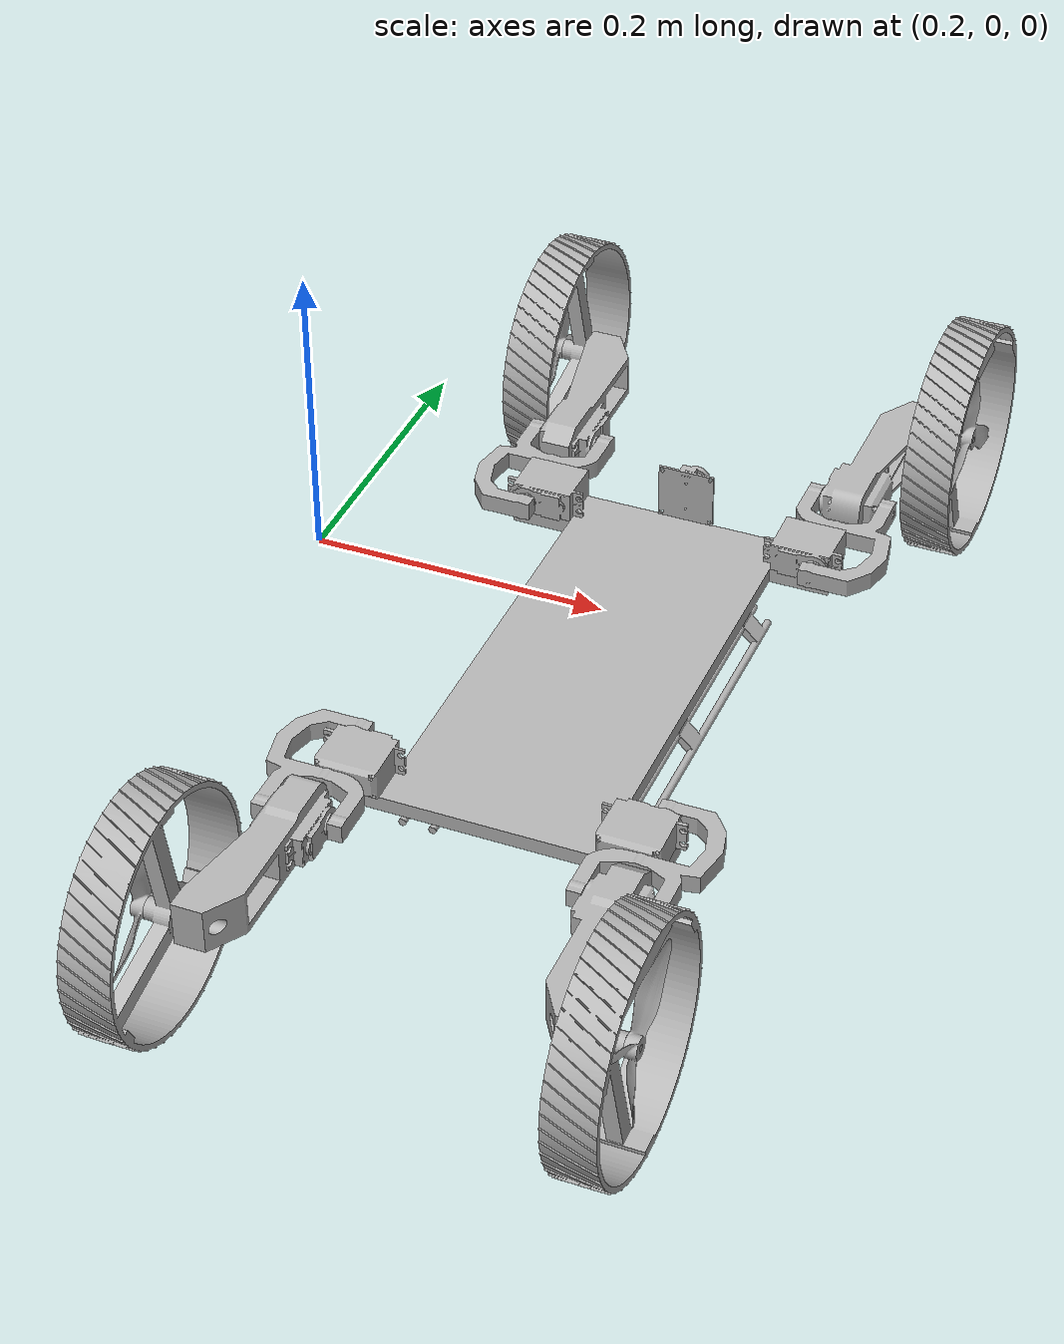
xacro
<?xml version="1.0" ?>
<robot name="eternalmorph" xmlns:xacro="http://www.ros.org/wiki/xacro">

<xacro:include filename="$(find eternalmorph_description)/urdf/materials.xacro" />
<xacro:include filename="$(find eternalmorph_description)/urdf/eternalmorph.trans" />
<xacro:include filename="$(find eternalmorph_description)/urdf/eternalmorph.gazebo" />

<link name="base_footprint"/>

<joint name="base_footprint_joint" type="fixed">
  <parent link="base_footprint"/>
  <child link="base_link"/>
  <origin xyz="0 0 0" rpy="0 0 0"/>
</joint>

<link name="base_link">
  <inertial>
    <origin xyz="0.42 -0.06499999999999996 0.005" rpy="0 0 0"/>
    <mass value="4.016059999999999"/>
    <inertia ixx="0.041679" iyy="0.009163" izz="0.050775" ixy="0.0" iyz="0.0" ixz="-0.0"/>
  </inertial>
  <visual>
    <origin xyz="0 0 0" rpy="0 0 0"/>
    <geometry>
      <mesh filename="package://eternalmorph_description/meshes/base_link.stl" scale="0.001 0.001 0.001"/>
    </geometry>
    <material name="silver"/>
  </visual>
  <collision>
    <origin xyz="0 0 0" rpy="0 0 0"/>
    <geometry>
      <mesh filename="package://eternalmorph_description/meshes/base_link.stl" scale="0.001 0.001 0.001"/>
    </geometry>
  </collision>
</link>

<link name="sol_on_ust_motor_1">
  <inertial>
    <origin xyz="0.01983439938277437 0.015972353352877652 0.010000102211902067" rpy="0 0 0"/>
    <mass value="0.24006738148077642"/>
    <inertia ixx="3.6e-05" iyy="4e-05" izz="6.1e-05" ixy="-1e-06" iyz="0.0" ixz="0.0"/>
  </inertial>
  <visual>
    <origin xyz="-0.31 -0.069 -0.01" rpy="0 0 0"/>
    <geometry>
      <mesh filename="package://eternalmorph_description/meshes/sol_on_ust_motor_1.stl" scale="0.001 0.001 0.001"/>
    </geometry>
    <material name="silver"/>
  </visual>
  <collision>
    <origin xyz="-0.31 -0.069 -0.01" rpy="0 0 0"/>
    <geometry>
      <mesh filename="package://eternalmorph_description/meshes/sol_on_ust_motor_1.stl" scale="0.001 0.001 0.001"/>
    </geometry>
  </collision>
</link>

<link name="sag_on_ust_motor_1">
  <inertial>
    <origin xyz="-0.019834399382774426 0.01597235335287768 0.009999897788097964" rpy="0 0 0"/>
    <mass value="0.24006738148077642"/>
    <inertia ixx="3.6e-05" iyy="4e-05" izz="6.1e-05" ixy="1e-06" iyz="-0.0" ixz="0.0"/>
  </inertial>
  <visual>
    <origin xyz="-0.53 -0.069 -0.01" rpy="0 0 0"/>
    <geometry>
      <mesh filename="package://eternalmorph_description/meshes/sag_on_ust_motor_1.stl" scale="0.001 0.001 0.001"/>
    </geometry>
    <material name="silver"/>
  </visual>
  <collision>
    <origin xyz="-0.53 -0.069 -0.01" rpy="0 0 0"/>
    <geometry>
      <mesh filename="package://eternalmorph_description/meshes/sag_on_ust_motor_1.stl" scale="0.001 0.001 0.001"/>
    </geometry>
  </collision>
</link>

<link name="sol_arka_ust_motor_1">
  <inertial>
    <origin xyz="0.01983439938277365 -0.01597235335287764 0.009999897788099404" rpy="0 0 0"/>
    <mass value="0.24006738148077642"/>
    <inertia ixx="3.6e-05" iyy="4e-05" izz="6.1e-05" ixy="1e-06" iyz="0.0" ixz="-0.0"/>
  </inertial>
  <visual>
    <origin xyz="-0.31 0.199 -0.01" rpy="0 0 0"/>
    <geometry>
      <mesh filename="package://eternalmorph_description/meshes/sol_arka_ust_motor_1.stl" scale="0.001 0.001 0.001"/>
    </geometry>
    <material name="silver"/>
  </visual>
  <collision>
    <origin xyz="-0.31 0.199 -0.01" rpy="0 0 0"/>
    <geometry>
      <mesh filename="package://eternalmorph_description/meshes/sol_arka_ust_motor_1.stl" scale="0.001 0.001 0.001"/>
    </geometry>
  </collision>
</link>

<link name="sag_arka_ust_motor_1">
  <inertial>
    <origin xyz="0.02016560061722561 -0.01597235335287761 0.010000102211902036" rpy="0 0 0"/>
    <mass value="0.24006738148077642"/>
    <inertia ixx="3.6e-05" iyy="4e-05" izz="6.1e-05" ixy="-1e-06" iyz="-0.0" ixz="-0.0"/>
  </inertial>
  <visual>
    <origin xyz="-0.49 0.199 -0.01" rpy="0 0 0"/>
    <geometry>
      <mesh filename="package://eternalmorph_description/meshes/sag_arka_ust_motor_1.stl" scale="0.001 0.001 0.001"/>
    </geometry>
    <material name="silver"/>
  </visual>
  <collision>
    <origin xyz="-0.49 0.199 -0.01" rpy="0 0 0"/>
    <geometry>
      <mesh filename="package://eternalmorph_description/meshes/sag_arka_ust_motor_1.stl" scale="0.001 0.001 0.001"/>
    </geometry>
  </collision>
</link>

<link name="sol_on_teker_1">
  <inertial>
    <origin xyz="-0.014453505744212336 -4.3077978609251666e-07 -1.4535181173253031e-08" rpy="0 0 0"/>
    <mass value="0.6867946162142627"/>
    <inertia ixx="0.003171" iyy="0.001639" izz="0.001639" ixy="-0.0" iyz="0.0" ixz="-0.0"/>
  </inertial>
  <visual>
    <origin xyz="-0.293181 -0.244976 -0.019994" rpy="0 0 0"/>
    <geometry>
      <mesh filename="package://eternalmorph_description/meshes/sol_on_teker_1.stl" scale="0.001 0.001 0.001"/>
    </geometry>
    <material name="silver"/>
  </visual>
  <collision>
    <origin xyz="-0.0165 0 0" rpy="0 1.5707963 0"/>
    <geometry>
      <cylinder radius="0.0795" length="0.033"/>
    </geometry>
  </collision>
</link>

<link name="sol_arka_teker_1">
  <inertial>
    <origin xyz="-0.014453505744213224 4.2949332074160296e-07 -0.0003923923806864356" rpy="0 0 0"/>
    <mass value="0.6867946162142627"/>
    <inertia ixx="0.003171" iyy="0.001639" izz="0.001639" ixy="-0.0" iyz="0.0" ixz="0.0"/>
  </inertial>
  <visual>
    <origin xyz="-0.293181 0.374976 -0.020006" rpy="0 0 0"/>
    <geometry>
      <mesh filename="package://eternalmorph_description/meshes/sol_arka_teker_1.stl" scale="0.001 0.001 0.001"/>
    </geometry>
    <material name="silver"/>
  </visual>
  <collision>
    <origin xyz="-0.0165 0 0" rpy="0 1.5707963 0"/>
    <geometry>
      <cylinder radius="0.0795" length="0.033"/>
    </geometry>
  </collision>
</link>

<link name="sag_on_teker_1">
  <inertial>
    <origin xyz="0.014453505744212225 -4.2949331915953515e-07 0.0003924214510405387" rpy="0 0 0"/>
    <mass value="0.6867946162142627"/>
    <inertia ixx="0.003171" iyy="0.001639" izz="0.001639" ixy="0.0" iyz="-0.0" ixz="-0.0"/>
  </inertial>
  <visual>
    <origin xyz="-0.546819 -0.244976 -0.020006" rpy="0 0 0"/>
    <geometry>
      <mesh filename="package://eternalmorph_description/meshes/sag_on_teker_1.stl" scale="0.001 0.001 0.001"/>
    </geometry>
    <material name="silver"/>
  </visual>
  <collision>
    <origin xyz="0.0165 0 0" rpy="0 1.5707963 0"/>
    <geometry>
      <cylinder radius="0.0795" length="0.033"/>
    </geometry>
  </collision>
</link>

<link name="sag_arka_teker_1">
  <inertial>
    <origin xyz="0.014453505744212225 4.3077978767458447e-07 0.00039239238068411106" rpy="0 0 0"/>
    <mass value="0.6867946162142627"/>
    <inertia ixx="0.003171" iyy="0.001639" izz="0.001639" ixy="0.0" iyz="-0.0" ixz="-0.0"/>
  </inertial>
  <visual>
    <origin xyz="-0.546819 0.374976 -0.019994" rpy="0 0 0"/>
    <geometry>
      <mesh filename="package://eternalmorph_description/meshes/sag_arka_teker_1.stl" scale="0.001 0.001 0.001"/>
    </geometry>
    <material name="silver"/>
  </visual>
  <collision>
    <origin xyz="0.0165 0 0" rpy="0 1.5707963 0"/>
    <geometry>
      <cylinder radius="0.0795" length="0.033"/>
    </geometry>
  </collision>
</link>

<link name="sol_on_tekerlek_eksen_1">
  <inertial>
    <origin xyz="-0.02705118983998983 0.03409722121227965 4.839047473507302e-06" rpy="0 0 0"/>
    <mass value="0.6520461399883267"/>
    <inertia ixx="0.001015" iyy="0.00012" izz="0.001018" ixy="9.4e-05" iyz="0.0" ixz="-0.0"/>
  </inertial>
  <visual>
    <origin xyz="-0.343698 -0.142476 -0.019994" rpy="0 0 0"/>
    <geometry>
      <mesh filename="package://eternalmorph_description/meshes/sol_on_tekerlek_eksen_1.stl" scale="0.001 0.001 0.001"/>
    </geometry>
    <material name="silver"/>
  </visual>
  <collision>
    <origin xyz="-0.343698 -0.142476 -0.019994" rpy="0 0 0"/>
    <geometry>
      <mesh filename="package://eternalmorph_description/meshes/sol_on_tekerlek_eksen_1.stl" scale="0.001 0.001 0.001"/>
    </geometry>
  </collision>
</link>

<link name="sol_on_tutucu_parca_1">
  <inertial>
    <origin xyz="-0.011352752133684585 0.04119528463513489 -7.40791396371121e-07" rpy="0 0 0"/>
    <mass value="0.19250580059635927"/>
    <inertia ixx="0.000144" iyy="9.4e-05" izz="0.000233" ixy="-4.3e-05" iyz="-0.0" ixz="0.0"/>
  </inertial>
  <visual>
    <origin xyz="-0.32 -0.061 -0.019994" rpy="0 0 0"/>
    <geometry>
      <mesh filename="package://eternalmorph_description/meshes/sol_on_tutucu_parca_1.stl" scale="0.001 0.001 0.001"/>
    </geometry>
    <material name="silver"/>
  </visual>
  <collision>
    <origin xyz="-0.32 -0.061 -0.019994" rpy="0 0 0"/>
    <geometry>
      <mesh filename="package://eternalmorph_description/meshes/sol_on_tutucu_parca_1.stl" scale="0.001 0.001 0.001"/>
    </geometry>
  </collision>
</link>

<link name="sag_on_tekerlek_eksen_1">
  <inertial>
    <origin xyz="0.027051189839989775 0.034097221212279816 -4.8390474734726074e-06" rpy="0 0 0"/>
    <mass value="0.652046139988327"/>
    <inertia ixx="0.001015" iyy="0.00012" izz="0.001018" ixy="-9.4e-05" iyz="-0.0" ixz="-0.0"/>
  </inertial>
  <visual>
    <origin xyz="-0.496302 -0.142476 -0.020006" rpy="0 0 0"/>
    <geometry>
      <mesh filename="package://eternalmorph_description/meshes/sag_on_tekerlek_eksen_1.stl" scale="0.001 0.001 0.001"/>
    </geometry>
    <material name="silver"/>
  </visual>
  <collision>
    <origin xyz="-0.496302 -0.142476 -0.020006" rpy="0 0 0"/>
    <geometry>
      <mesh filename="package://eternalmorph_description/meshes/sag_on_tekerlek_eksen_1.stl" scale="0.001 0.001 0.001"/>
    </geometry>
  </collision>
</link>

<link name="sag_on_tutucu_parca_1">
  <inertial>
    <origin xyz="0.011352752133684474 0.04119528463513493 7.407913964058155e-07" rpy="0 0 0"/>
    <mass value="0.19250580059635927"/>
    <inertia ixx="0.000144" iyy="9.4e-05" izz="0.000233" ixy="4.3e-05" iyz="0.0" ixz="0.0"/>
  </inertial>
  <visual>
    <origin xyz="-0.52 -0.061 -0.020006" rpy="0 0 0"/>
    <geometry>
      <mesh filename="package://eternalmorph_description/meshes/sag_on_tutucu_parca_1.stl" scale="0.001 0.001 0.001"/>
    </geometry>
    <material name="silver"/>
  </visual>
  <collision>
    <origin xyz="-0.52 -0.061 -0.020006" rpy="0 0 0"/>
    <geometry>
      <mesh filename="package://eternalmorph_description/meshes/sag_on_tutucu_parca_1.stl" scale="0.001 0.001 0.001"/>
    </geometry>
  </collision>
</link>

<link name="sol_arka_tekerlek_eksen_1">
  <inertial>
    <origin xyz="-0.027051189839990553 -0.034097221212279594 -4.8390474730077015e-06" rpy="0 0 0"/>
    <mass value="0.6520461399883272"/>
    <inertia ixx="0.001015" iyy="0.00012" izz="0.001018" ixy="-9.4e-05" iyz="0.0" ixz="0.0"/>
  </inertial>
  <visual>
    <origin xyz="-0.343698 0.272476 -0.020006" rpy="0 0 0"/>
    <geometry>
      <mesh filename="package://eternalmorph_description/meshes/sol_arka_tekerlek_eksen_1.stl" scale="0.001 0.001 0.001"/>
    </geometry>
    <material name="silver"/>
  </visual>
  <collision>
    <origin xyz="-0.343698 0.272476 -0.020006" rpy="0 0 0"/>
    <geometry>
      <mesh filename="package://eternalmorph_description/meshes/sol_arka_tekerlek_eksen_1.stl" scale="0.001 0.001 0.001"/>
    </geometry>
  </collision>
</link>

<link name="sol_arka_tutucu_parca_1">
  <inertial>
    <origin xyz="-0.011352752133685251 -0.041195284635134916 7.407913962878543e-07" rpy="0 0 0"/>
    <mass value="0.19250580059635924"/>
    <inertia ixx="0.000144" iyy="9.4e-05" izz="0.000233" ixy="4.3e-05" iyz="-0.0" ixz="-0.0"/>
  </inertial>
  <visual>
    <origin xyz="-0.32 0.191 -0.020006" rpy="0 0 0"/>
    <geometry>
      <mesh filename="package://eternalmorph_description/meshes/sol_arka_tutucu_parca_1.stl" scale="0.001 0.001 0.001"/>
    </geometry>
    <material name="silver"/>
  </visual>
  <collision>
    <origin xyz="-0.32 0.191 -0.020006" rpy="0 0 0"/>
    <geometry>
      <mesh filename="package://eternalmorph_description/meshes/sol_arka_tutucu_parca_1.stl" scale="0.001 0.001 0.001"/>
    </geometry>
  </collision>
</link>

<link name="sag_arka_tekerlek_eksen_1">
  <inertial>
    <origin xyz="0.027051189839989775 -0.03409722121227948 4.839047473469138e-06" rpy="0 0 0"/>
    <mass value="0.652046139988327"/>
    <inertia ixx="0.001015" iyy="0.00012" izz="0.001018" ixy="9.4e-05" iyz="-0.0" ixz="0.0"/>
  </inertial>
  <visual>
    <origin xyz="-0.496302 0.272476 -0.019994" rpy="0 0 0"/>
    <geometry>
      <mesh filename="package://eternalmorph_description/meshes/sag_arka_tekerlek_eksen_1.stl" scale="0.001 0.001 0.001"/>
    </geometry>
    <material name="silver"/>
  </visual>
  <collision>
    <origin xyz="-0.496302 0.272476 -0.019994" rpy="0 0 0"/>
    <geometry>
      <mesh filename="package://eternalmorph_description/meshes/sag_arka_tekerlek_eksen_1.stl" scale="0.001 0.001 0.001"/>
    </geometry>
  </collision>
</link>

<link name="sag_arka_tutucu_parca_1">
  <inertial>
    <origin xyz="0.011352752133684474 -0.04119528463513486 -7.40791396402346e-07" rpy="0 0 0"/>
    <mass value="0.19250580059635927"/>
    <inertia ixx="0.000144" iyy="9.4e-05" izz="0.000233" ixy="-4.3e-05" iyz="0.0" ixz="-0.0"/>
  </inertial>
  <visual>
    <origin xyz="-0.52 0.191 -0.019994" rpy="0 0 0"/>
    <geometry>
      <mesh filename="package://eternalmorph_description/meshes/sag_arka_tutucu_parca_1.stl" scale="0.001 0.001 0.001"/>
    </geometry>
    <material name="silver"/>
  </visual>
  <collision>
    <origin xyz="-0.52 0.191 -0.019994" rpy="0 0 0"/>
    <geometry>
      <mesh filename="package://eternalmorph_description/meshes/sag_arka_tutucu_parca_1.stl" scale="0.001 0.001 0.001"/>
    </geometry>
  </collision>
</link>

<link name="sol_on_pervane_1">
  <inertial>
    <origin xyz="2.6430573e-07 -3.0606814e-07 0.0027102891" rpy="0 1.57079632679 0"/>
    <mass value="0.027453359988130525"/>
    <inertia ixx="1.0e-05" iyy="1e-05" izz="1e-05" ixy="-0.0" iyz="-0.0" ixz="-0.0"/>
  </inertial>
  <visual>
    <origin xyz="-0.019994 -0.244976 0.274181" rpy="0 1.57079632679 0"/>
    <geometry>
      <mesh filename="package://eternalmorph_description/meshes/sol_on_pervane_1.stl" scale="0.001 0.001 0.001"/>
    </geometry>
    <material name="silver"/>
  </visual>
  <collision>
    <origin xyz="-0.019994 -0.244976 0.274181" rpy="0 1.57079632679 0"/>
    <geometry>
      <mesh filename="package://eternalmorph_description/meshes/sol_on_pervane_1.stl" scale="0.001 0.001 0.001"/>
    </geometry>
  </collision>
</link>

<link name="sol_arka_pervane_1">
  <inertial>
    <origin xyz="-1.1353977e-07 5.5420496e-07 0.0027102891" rpy="0 1.57079632679 0"/>
    <mass value="0.027453359988130525"/>
    <inertia ixx="1.0e-05" iyy="1e-05" izz="1e-05" ixy="-0.0" iyz="-0.0" ixz="-0.0"/>
  </inertial>
  <visual>
    <origin xyz="-0.019614 0.374976 0.274181" rpy="0 1.57079632679 0"/>
    <geometry>
      <mesh filename="package://eternalmorph_description/meshes/sol_arka_pervane_1.stl" scale="0.001 0.001 0.001"/>
    </geometry>
    <material name="silver"/>
  </visual>
  <collision>
    <origin xyz="-0.019614 0.374976 0.274181" rpy="0 1.57079632679 0"/>
    <geometry>
      <mesh filename="package://eternalmorph_description/meshes/sol_arka_pervane_1.stl" scale="0.001 0.001 0.001"/>
    </geometry>
  </collision>
</link>

<link name="sag_arka_pervane_1">
  <inertial>
    <origin xyz="-1.4261013e-07 -3.0478168e-07 0.0027102891" rpy="0 -1.57079632679 0"/>
    <mass value="0.027453359988130525"/>
    <inertia ixx="1.0e-05" iyy="1e-05" izz="1e-05" ixy="0.0" iyz="0.0" ixz="-0.0"/>
  </inertial>
  <visual>
    <origin xyz="0.020398 -0.244976 -0.565819" rpy="0 -1.57079632679 0"/>
    <geometry>
      <mesh filename="package://eternalmorph_description/meshes/sag_arka_pervane_1.stl" scale="0.001 0.001 0.001"/>
    </geometry>
    <material name="silver"/>
  </visual>
  <collision>
    <origin xyz="0.020398 -0.244976 -0.565819" rpy="0 -1.57079632679 0"/>
    <geometry>
      <mesh filename="package://eternalmorph_description/meshes/sag_arka_pervane_1.stl" scale="0.001 0.001 0.001"/>
    </geometry>
  </collision>
</link>

<link name="sag_on_pervane_1">
  <inertial>
    <origin xyz="-6.7122159e-07 3.0606815e-07 0.0026102891" rpy="0 -1.57079632679 0"/>
    <mass value="0.027453359988130525"/>
    <inertia ixx="1.0e-05" iyy="1e-05" izz="1e-05" ixy="-0.0" iyz="0.0" ixz="0.0"/>
  </inertial>
  <visual>
    <origin xyz="0.020386 0.374976 -0.565819" rpy="0 -1.57079632679 0"/>
    <geometry>
      <mesh filename="package://eternalmorph_description/meshes/sag_on_pervane_1.stl" scale="0.001 0.001 0.001"/>
    </geometry>
    <material name="silver"/>
  </visual>
  <collision>
    <origin xyz="0.020386 0.374976 -0.565819" rpy="0 -1.57079632679 0"/>
    <geometry>
      <mesh filename="package://eternalmorph_description/meshes/sag_on_pervane_1.stl" scale="0.001 0.001 0.001"/>
    </geometry>
  </collision>
</link>

<link name="bacak_1">
  <inertial>
    <origin xyz="-3.96605842611919e-09 -1.249000902703301e-16 -0.012273842052685759" rpy="0 0 0"/>
    <mass value="1.0024673044067163"/>
    <inertia ixx="0.007138" iyy="0.00266" izz="0.00944" ixy="-0.0" iyz="-0.0" ixz="-0.0"/>
  </inertial>
  <visual>
    <origin xyz="-0.42 0.065 -0.0" rpy="0 0 0"/>
    <geometry>
      <mesh filename="package://eternalmorph_description/meshes/bacak_1.stl" scale="0.001 0.001 0.001"/>
    </geometry>
    <material name="silver"/>
  </visual>
  <collision>
    <origin xyz="-0.42 0.065 -0.0" rpy="0 0 0"/>
    <geometry>
      <mesh filename="package://eternalmorph_description/meshes/bacak_1.stl" scale="0.001 0.001 0.001"/>
    </geometry>
  </collision>
</link>

<joint name="sol_on_fixed" type="fixed">
  <origin xyz="0.31 0.069 0.01" rpy="0 0 0"/>
  <parent link="base_link"/>
  <child link="sol_on_ust_motor_1"/>
</joint>

<joint name="sag_on_fixed" type="fixed">
  <origin xyz="0.53 0.069 0.01" rpy="0 0 0"/>
  <parent link="base_link"/>
  <child link="sag_on_ust_motor_1"/>
</joint>

<joint name="sol_arka_fixed" type="fixed">
  <origin xyz="0.31 -0.199 0.01" rpy="0 0 0"/>
  <parent link="base_link"/>
  <child link="sol_arka_ust_motor_1"/>
</joint>

<joint name="sag_arka_fixed" type="fixed">
  <origin xyz="0.49 -0.199 0.01" rpy="0 0 0"/>
  <parent link="base_link"/>
  <child link="sag_arka_ust_motor_1"/>
</joint>

<joint name="sol_on_teker" type="continuous">
  <origin xyz="-0.050517 0.1025 0.0" rpy="0 0 0"/>
  <parent link="sol_on_tekerlek_eksen_1"/>
  <child link="sol_on_teker_1"/>
  <axis xyz="1.0 0.0 0.0"/>
  <dynamics damping="0.05" friction="0.01"/>
</joint>

<joint name="sol_arka_teker" type="continuous">
  <origin xyz="-0.050517 -0.1025 0.0" rpy="0 0 0"/>
  <parent link="sol_arka_tekerlek_eksen_1"/>
  <child link="sol_arka_teker_1"/>
  <axis xyz="1.0 0.0 0.0"/>
  <dynamics damping="0.05" friction="0.01"/>
</joint>

<joint name="sag_on_teker" type="continuous">
  <origin xyz="0.050517 0.1025 0.0" rpy="0 0 0"/>
  <parent link="sag_on_tekerlek_eksen_1"/>
  <child link="sag_on_teker_1"/>
  <axis xyz="1.0 0.0 0.0"/>
  <dynamics damping="0.05" friction="0.01"/>
</joint>

<joint name="sag_arka_teker" type="continuous">
  <origin xyz="0.050517 -0.1025 0.0" rpy="0 0 0"/>
  <parent link="sag_arka_tekerlek_eksen_1"/>
  <child link="sag_arka_teker_1"/>
  <axis xyz="1.0 0.0 0.0"/>
  <dynamics damping="0.05" friction="0.01"/>
</joint>

<joint name="sol_on_pervane_joint" type="continuous">
  <origin xyz="-0.019 0.0 0.0" rpy="0 -1.57079632679 0"/>
  <parent link="sol_on_teker_1"/>
  <child link="sol_on_pervane_1"/>
  <axis xyz="0.0 0.0 1.0"/>
</joint>

<joint name="sol_arka_pervane_joint" type="continuous">
  <origin xyz="-0.019 0.0 -0.000392" rpy="0 -1.57079632679 0"/>
  <parent link="sol_arka_teker_1"/>
  <child link="sol_arka_pervane_1"/>
  <axis xyz="0.0 0.0 1.0"/>
</joint>

<joint name="sag_on_pervane_joint" type="continuous">
  <origin xyz="0.019 0.0 0.000392" rpy="0 1.57079632679 0"/>
  <parent link="sag_on_teker_1"/>
  <child link="sag_on_pervane_1"/>
  <axis xyz="0.0 0.0 1.0"/>
</joint>

<joint name="sag_arka_pervane_joint" type="continuous">
  <origin xyz="0.019 0.0 0.000392" rpy="0 1.57079632679 0"/>
  <parent link="sag_arka_teker_1"/>
  <child link="sag_arka_pervane_1"/>
  <axis xyz="0.0 0.0 1.0"/>
</joint>

<joint name="bacak_fixed_joint" type="fixed">
  <origin xyz="0.42 -0.065 0.0" rpy="0 0 0"/>
  <parent link="base_link"/>
  <child link="bacak_1"/>
</joint>

<joint name="sol_on_ground_mode" type="revolute">
  <origin xyz="0.023698 0.081476 0.0" rpy="0 0 0"/>
  <parent link="sol_on_tutucu_parca_1"/>
  <child link="sol_on_tekerlek_eksen_1"/>
  <axis xyz="-1.0 -0.0 0.0"/>
  <limit upper="1.7" lower="-0.2" effort="200" velocity="100"/>
  <dynamics damping="2.0" friction="0.2"/>
</joint>

<joint name="sol_on_air_mode" type="revolute">
  <origin xyz="0.01 -0.008 0.009994" rpy="0 0 0"/>
  <parent link="sol_on_ust_motor_1"/>
  <child link="sol_on_tutucu_parca_1"/>
  <axis xyz="0.0 -1.0 -0.0"/>
  <limit upper="0.2" lower="-1.7" effort="200" velocity="100"/>
  <dynamics damping="2.0" friction="0.2"/>
</joint>

<joint name="sag_on_ground_mode" type="revolute">
  <origin xyz="-0.023698 0.081476 0.0" rpy="0 0 0"/>
  <parent link="sag_on_tutucu_parca_1"/>
  <child link="sag_on_tekerlek_eksen_1"/>
  <axis xyz="1.0 0.0 0.0"/>
  <limit upper="0.2" lower="-1.7" effort="200" velocity="100"/>
  <dynamics damping="2.0" friction="0.2"/>
</joint>

<joint name="sag_on_air_mode" type="revolute">
  <origin xyz="-0.01 -0.008 0.010006" rpy="0 0 0"/>
  <parent link="sag_on_ust_motor_1"/>
  <child link="sag_on_tutucu_parca_1"/>
  <axis xyz="0.0 -1.0 0.0"/>
  <limit upper="1.7" lower="-0.2" effort="200" velocity="100"/>
  <dynamics damping="2.0" friction="0.2"/>
</joint>

<joint name="sol_arka_ground_mode" type="revolute">
  <origin xyz="0.023698 -0.081476 0.0" rpy="0 0 0"/>
  <parent link="sol_arka_tutucu_parca_1"/>
  <child link="sol_arka_tekerlek_eksen_1"/>
  <axis xyz="-1.0 -0.0 -0.0"/>
  <limit upper="0.2" lower="-1.7" effort="200" velocity="100"/>
  <dynamics damping="2.0" friction="0.2"/>
</joint>

<joint name="sol_arka_air_mode" type="revolute">
  <origin xyz="0.01 0.008 0.010006" rpy="0 0 0"/>
  <parent link="sol_arka_ust_motor_1"/>
  <child link="sol_arka_tutucu_parca_1"/>
  <axis xyz="-0.0 1.0 0.0"/>
  <limit upper="1.7" lower="-0.2" effort="200" velocity="100"/>
  <dynamics damping="2.0" friction="0.2"/>
</joint>

<joint name="sag_arka_ground_mode" type="revolute">
  <origin xyz="-0.023698 -0.081476 0.0" rpy="0 0 0"/>
  <parent link="sag_arka_tutucu_parca_1"/>
  <child link="sag_arka_tekerlek_eksen_1"/>
  <axis xyz="1.0 0.0 0.0"/>
  <limit upper="1.7" lower="-0.2" effort="200" velocity="100"/>
  <dynamics damping="2.0" friction="0.2"/>
</joint>

<joint name="sag_arka_air_mode" type="revolute">
  <origin xyz="0.03 0.008 0.009994" rpy="0 0 0"/>
  <parent link="sag_arka_ust_motor_1"/>
  <child link="sag_arka_tutucu_parca_1"/>
  <axis xyz="-0.0 1.0 0.0"/>
  <limit upper="0.2" lower="-1.7" effort="200" velocity="100"/>
  <dynamics damping="2.0" friction="0.2"/>
</joint>

<link name="camera_1">
    <inertial>
      <origin xyz="7.9669377317515e-08 0.007701579533281336 0.019385691102944518" rpy="0 0 0"/>
      <mass value="0.0441171047069775"/>
      <inertia ixx="6e-06" iyy="5e-06" izz="5e-06" ixy="0.0" iyz="0.0" ixz="-0.0"/>
    </inertial>
    <visual>
      <origin xyz="-0.42 -0.1 -0.01" rpy="0 0 0"/>
      <geometry>
        <mesh filename="package://eternalmorph_description/meshes/camera_1.stl" scale="0.001 0.001 0.001"/>
      </geometry>
      <material name="silver"/>
    </visual>
    <collision>
      <origin xyz="-0.42 -0.1 -0.01" rpy="0 0 0"/>
      <geometry>
        <mesh filename="package://eternalmorph_description/meshes/camera_1.stl" scale="0.001 0.001 0.001"/>
      </geometry>
    </collision>
  </link>

  <joint name="camera_joint" type="fixed">
    <origin xyz="0.42 0.1 0.01" rpy="0 0 0"/>
    <parent link="base_link"/>
    <child link="camera_1"/>
  </joint>

  <!-- Optical frame for ROS camera conventions (Z forward, X right, Y down) -->
  <link name="camera_1_optical_frame"/>

  <joint name="camera_1_optical_joint" type="fixed">
    <origin xyz="0 0.025 0.02" rpy="-1.5707963 0 0"/>
    <parent link="camera_1"/>
    <child link="camera_1_optical_frame"/>
  </joint>

  <!-- IMU link placed at the robot's actual Center of Mass (CoM) -->
  <link name="imu_link">
    <inertial>
      <mass value="0.001"/>
      <origin xyz="0 0 0" rpy="0 0 0"/>
      <inertia ixx="1e-07" iyy="1e-07" izz="1e-07" ixy="0" ixz="0" iyz="0"/>
    </inertial>
  </link>

  <joint name="imu_joint" type="fixed">
    <origin xyz="0.4200 -0.0644 0.0236" rpy="0 0 0"/>
    <parent link="base_link"/>
    <child link="imu_link"/>
  </joint>

  <!-- ===== ros2_control HARDWARE TANIMI (rover_ws ile birebir aynı mimari) ===== -->
  <ros2_control name="GazeboSystem" type="system">
    <hardware>
      <plugin>gz_ros2_control/GazeboSimSystem</plugin>
    </hardware>

    <joint name="sol_on_teker">
      <command_interface name="velocity">
        <param name="min">-20.0</param>
        <param name="max">20.0</param>
      </command_interface>
      <state_interface name="position"/>
      <state_interface name="velocity"/>
    </joint>

    <joint name="sag_on_teker">
      <command_interface name="velocity">
        <param name="min">-20.0</param>
        <param name="max">20.0</param>
      </command_interface>
      <state_interface name="position"/>
      <state_interface name="velocity"/>
    </joint>

    <joint name="sol_arka_teker">
      <command_interface name="velocity">
        <param name="min">-20.0</param>
        <param name="max">20.0</param>
      </command_interface>
      <state_interface name="position"/>
      <state_interface name="velocity"/>
    </joint>

    <joint name="sag_arka_teker">
      <command_interface name="velocity">
        <param name="min">-20.0</param>
        <param name="max">20.0</param>
      </command_interface>
      <state_interface name="position"/>
      <state_interface name="velocity"/>
    </joint>
  </ros2_control>

  <!-- ===== GAZEBO ROS2 CONTROL PLUGIN ===== -->
  <gazebo>
    <plugin filename="gz_ros2_control-system" name="gz_ros2_control::GazeboSimROS2ControlPlugin">
      <parameters>$(find eternalmorph_description)/config/controllers.yaml</parameters>
    </plugin>
  </gazebo>

</robot>

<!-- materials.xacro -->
<robot name="eternalmorph" xmlns:xacro="http://www.ros.org/wiki/xacro" >

<material name="silver">
  <color rgba="0.700 0.700 0.700 1.000"/>
</material>

</robot>

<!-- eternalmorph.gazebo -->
<robot name="eternalmorph" xmlns:xacro="http://www.ros.org/wiki/xacro" >

<xacro:property name="body_color" value="Gazebo/Silver" />

<gazebo>
  <!-- Joint State Publisher Plugin -->
  <plugin
    filename="gz-sim-joint-state-publisher-system"
    name="gz::sim::systems::JointStatePublisher">
  </plugin>

  <!-- IMU System Plugin -->
  <plugin
    filename="gz-sim-imu-system"
    name="gz::sim::systems::Imu">
  </plugin>

  <!-- 3D Flight Odometry Publisher for Position Hold & Velocity Braking -->
  <plugin
    filename="gz-sim-odometry-publisher-system"
    name="gz::sim::systems::OdometryPublisher">
    <odom_frame>world</odom_frame>
    <robot_base_frame>base_link</robot_base_frame>
    <dimensions>3</dimensions>
    <odom_publish_frequency>50</odom_publish_frequency>
    <odom_topic>/odom</odom_topic>
  </plugin>

  <!-- Joint Position Controllers for Folding Mechanism -->
  <plugin filename="gz-sim-joint-position-controller-system" name="gz::sim::systems::JointPositionController">
    <joint_name>sol_on_ground_mode</joint_name>
    <topic>/eternalmorph/sol_on_ground_mode/cmd_pos</topic>
    <p_gain>150.0</p_gain>
    <i_gain>0.1</i_gain>
    <d_gain>8.0</d_gain>
    <cmd_max>60.0</cmd_max>
    <cmd_min>-60.0</cmd_min>
  </plugin>
  <plugin filename="gz-sim-joint-position-controller-system" name="gz::sim::systems::JointPositionController">
    <joint_name>sol_on_air_mode</joint_name>
    <topic>/eternalmorph/sol_on_air_mode/cmd_pos</topic>
    <p_gain>150.0</p_gain>
    <i_gain>0.1</i_gain>
    <d_gain>8.0</d_gain>
    <cmd_max>60.0</cmd_max>
    <cmd_min>-60.0</cmd_min>
  </plugin>
  <plugin filename="gz-sim-joint-position-controller-system" name="gz::sim::systems::JointPositionController">
    <joint_name>sag_on_ground_mode</joint_name>
    <topic>/eternalmorph/sag_on_ground_mode/cmd_pos</topic>
    <p_gain>150.0</p_gain>
    <i_gain>0.1</i_gain>
    <d_gain>8.0</d_gain>
    <cmd_max>60.0</cmd_max>
    <cmd_min>-60.0</cmd_min>
  </plugin>
  <plugin filename="gz-sim-joint-position-controller-system" name="gz::sim::systems::JointPositionController">
    <joint_name>sag_on_air_mode</joint_name>
    <topic>/eternalmorph/sag_on_air_mode/cmd_pos</topic>
    <p_gain>150.0</p_gain>
    <i_gain>0.1</i_gain>
    <d_gain>8.0</d_gain>
    <cmd_max>60.0</cmd_max>
    <cmd_min>-60.0</cmd_min>
  </plugin>
  <plugin filename="gz-sim-joint-position-controller-system" name="gz::sim::systems::JointPositionController">
    <joint_name>sol_arka_ground_mode</joint_name>
    <topic>/eternalmorph/sol_arka_ground_mode/cmd_pos</topic>
    <p_gain>150.0</p_gain>
    <i_gain>0.1</i_gain>
    <d_gain>8.0</d_gain>
    <cmd_max>60.0</cmd_max>
    <cmd_min>-60.0</cmd_min>
  </plugin>
  <plugin filename="gz-sim-joint-position-controller-system" name="gz::sim::systems::JointPositionController">
    <joint_name>sol_arka_air_mode</joint_name>
    <topic>/eternalmorph/sol_arka_air_mode/cmd_pos</topic>
    <p_gain>150.0</p_gain>
    <i_gain>0.1</i_gain>
    <d_gain>8.0</d_gain>
    <cmd_max>60.0</cmd_max>
    <cmd_min>-60.0</cmd_min>
  </plugin>
  <plugin filename="gz-sim-joint-position-controller-system" name="gz::sim::systems::JointPositionController">
    <joint_name>sag_arka_ground_mode</joint_name>
    <topic>/eternalmorph/sag_arka_ground_mode/cmd_pos</topic>
    <p_gain>150.0</p_gain>
    <i_gain>0.1</i_gain>
    <d_gain>8.0</d_gain>
    <cmd_max>60.0</cmd_max>
    <cmd_min>-60.0</cmd_min>
  </plugin>
  <plugin filename="gz-sim-joint-position-controller-system" name="gz::sim::systems::JointPositionController">
    <joint_name>sag_arka_air_mode</joint_name>
    <topic>/eternalmorph/sag_arka_air_mode/cmd_pos</topic>
    <p_gain>150.0</p_gain>
    <i_gain>0.1</i_gain>
    <d_gain>8.0</d_gain>
    <cmd_max>60.0</cmd_max>
    <cmd_min>-60.0</cmd_min>
  </plugin>

  <!-- Multicopter Motor Models for Propeller Control & Thrust -->
  <plugin filename="libgz-sim-multicopter-motor-model-system.so" name="gz::sim::systems::MulticopterMotorModel">
    <robotNamespace>eternalmorph</robotNamespace>
    <jointName>sol_on_pervane_joint</jointName>
    <linkName>sol_on_pervane_1</linkName>
    <turningDirection>ccw</turningDirection>
    <timeConstantUp>0.0125</timeConstantUp>
    <timeConstantDown>0.025</timeConstantDown>
    <maxRotVelocity>2000.0</maxRotVelocity>
    <motorConstant>2.0e-05</motorConstant>
    <momentConstant>0.04</momentConstant>
    <commandSubTopic>command/motor_speed</commandSubTopic>
    <actuator_number>0</actuator_number>
    <motorNumber>0</motorNumber>
    <rotorDragCoefficient>8.06428e-05</rotorDragCoefficient>
    <rollingMomentCoefficient>1e-06</rollingMomentCoefficient>
    <rotorVelocitySlowdownSim>10</rotorVelocitySlowdownSim>
    <motorType>velocity</motorType>
  </plugin>

  <plugin filename="libgz-sim-multicopter-motor-model-system.so" name="gz::sim::systems::MulticopterMotorModel">
    <robotNamespace>eternalmorph</robotNamespace>
    <jointName>sol_arka_pervane_joint</jointName>
    <linkName>sol_arka_pervane_1</linkName>
    <turningDirection>cw</turningDirection>
    <timeConstantUp>0.0125</timeConstantUp>
    <timeConstantDown>0.025</timeConstantDown>
    <maxRotVelocity>2000.0</maxRotVelocity>
    <motorConstant>2.0e-05</motorConstant>
    <momentConstant>0.04</momentConstant>
    <commandSubTopic>command/motor_speed</commandSubTopic>
    <actuator_number>1</actuator_number>
    <motorNumber>1</motorNumber>
    <rotorDragCoefficient>8.06428e-05</rotorDragCoefficient>
    <rollingMomentCoefficient>1e-06</rollingMomentCoefficient>
    <rotorVelocitySlowdownSim>10</rotorVelocitySlowdownSim>
    <motorType>velocity</motorType>
  </plugin>

  <plugin filename="libgz-sim-multicopter-motor-model-system.so" name="gz::sim::systems::MulticopterMotorModel">
    <robotNamespace>eternalmorph</robotNamespace>
    <jointName>sag_on_pervane_joint</jointName>
    <linkName>sag_on_pervane_1</linkName>
    <turningDirection>cw</turningDirection>
    <timeConstantUp>0.0125</timeConstantUp>
    <timeConstantDown>0.025</timeConstantDown>
    <maxRotVelocity>2000.0</maxRotVelocity>
    <motorConstant>2.0e-05</motorConstant>
    <momentConstant>0.04</momentConstant>
    <commandSubTopic>command/motor_speed</commandSubTopic>
    <actuator_number>2</actuator_number>
    <motorNumber>2</motorNumber>
    <rotorDragCoefficient>8.06428e-05</rotorDragCoefficient>
    <rollingMomentCoefficient>1e-06</rollingMomentCoefficient>
    <rotorVelocitySlowdownSim>10</rotorVelocitySlowdownSim>
    <motorType>velocity</motorType>
  </plugin>

  <plugin filename="libgz-sim-multicopter-motor-model-system.so" name="gz::sim::systems::MulticopterMotorModel">
    <robotNamespace>eternalmorph</robotNamespace>
    <jointName>sag_arka_pervane_joint</jointName>
    <linkName>sag_arka_pervane_1</linkName>
    <turningDirection>ccw</turningDirection>
    <timeConstantUp>0.0125</timeConstantUp>
    <timeConstantDown>0.025</timeConstantDown>
    <maxRotVelocity>2000.0</maxRotVelocity>
    <motorConstant>2.0e-05</motorConstant>
    <momentConstant>0.04</momentConstant>
    <commandSubTopic>command/motor_speed</commandSubTopic>
    <actuator_number>3</actuator_number>
    <motorNumber>3</motorNumber>
    <rotorDragCoefficient>8.06428e-05</rotorDragCoefficient>
    <rollingMomentCoefficient>1e-06</rollingMomentCoefficient>
    <rotorVelocitySlowdownSim>10</rotorVelocitySlowdownSim>
    <motorType>velocity</motorType>
  </plugin>
</gazebo>

<gazebo reference="base_link">
  <material>${body_color}</material>
  <mu1>0.2</mu1>
  <mu2>0.2</mu2>
  <selfCollide>false</selfCollide>
  <gravity>true</gravity>
</gazebo>

<gazebo reference="sol_on_ust_motor_1">
  <material>${body_color}</material>
  <mu1>0.2</mu1>
  <mu2>0.2</mu2>
  <selfCollide>false</selfCollide>
</gazebo>

<gazebo reference="sag_on_ust_motor_1">
  <material>${body_color}</material>
  <mu1>0.2</mu1>
  <mu2>0.2</mu2>
  <selfCollide>false</selfCollide>
</gazebo>

<gazebo reference="sol_arka_ust_motor_1">
  <material>${body_color}</material>
  <mu1>0.2</mu1>
  <mu2>0.2</mu2>
  <selfCollide>false</selfCollide>
</gazebo>

<gazebo reference="sag_arka_ust_motor_1">
  <material>${body_color}</material>
  <mu1>0.2</mu1>
  <mu2>0.2</mu2>
  <selfCollide>false</selfCollide>
</gazebo>

<gazebo reference="sol_on_tekerlek_eksen_1">
  <material>${body_color}</material>
  <mu1>0.2</mu1>
  <mu2>0.2</mu2>
  <selfCollide>false</selfCollide>
</gazebo>

<gazebo reference="sol_on_tutucu_parca_1">
  <material>${body_color}</material>
  <mu1>0.2</mu1>
  <mu2>0.2</mu2>
  <selfCollide>false</selfCollide>
</gazebo>

<gazebo reference="sag_on_tekerlek_eksen_1">
  <material>${body_color}</material>
  <mu1>0.2</mu1>
  <mu2>0.2</mu2>
  <selfCollide>false</selfCollide>
</gazebo>

<gazebo reference="sag_on_tutucu_parca_1">
  <material>${body_color}</material>
  <mu1>0.2</mu1>
  <mu2>0.2</mu2>
  <selfCollide>false</selfCollide>
</gazebo>

<gazebo reference="sol_arka_tekerlek_eksen_1">
  <material>${body_color}</material>
  <mu1>0.2</mu1>
  <mu2>0.2</mu2>
  <selfCollide>false</selfCollide>
</gazebo>

<gazebo reference="sol_arka_tutucu_parca_1">
  <material>${body_color}</material>
  <mu1>0.2</mu1>
  <mu2>0.2</mu2>
  <selfCollide>false</selfCollide>
</gazebo>

<gazebo reference="sag_arka_tekerlek_eksen_1">
  <material>${body_color}</material>
  <mu1>0.2</mu1>
  <mu2>0.2</mu2>
  <selfCollide>false</selfCollide>
</gazebo>

<gazebo reference="sag_arka_tutucu_parca_1">
  <material>${body_color}</material>
  <mu1>0.2</mu1>
  <mu2>0.2</mu2>
  <selfCollide>false</selfCollide>
</gazebo>

<gazebo reference="sol_on_teker_1">
  <material>${body_color}</material>
  <mu1>0.7</mu1>
  <mu2>0.25</mu2>
  <fdir1>0 1 0</fdir1>
  <kp>10000000.0</kp>
  <kd>1.0</kd>
  <minDepth>0.001</minDepth>
  <selfCollide>false</selfCollide>
</gazebo>

<gazebo reference="sol_arka_teker_1">
  <material>${body_color}</material>
  <mu1>0.7</mu1>
  <mu2>0.25</mu2>
  <fdir1>0 1 0</fdir1>
  <kp>10000000.0</kp>
  <kd>1.0</kd>
  <minDepth>0.001</minDepth>
  <selfCollide>false</selfCollide>
</gazebo>

<gazebo reference="sag_on_teker_1">
  <material>${body_color}</material>
  <mu1>0.7</mu1>
  <mu2>0.25</mu2>
  <fdir1>0 1 0</fdir1>
  <kp>10000000.0</kp>
  <kd>1.0</kd>
  <minDepth>0.001</minDepth>
  <selfCollide>false</selfCollide>
</gazebo>

<gazebo reference="sag_arka_teker_1">
  <material>${body_color}</material>
  <mu1>0.7</mu1>
  <mu2>0.25</mu2>
  <fdir1>0 1 0</fdir1>
  <kp>10000000.0</kp>
  <kd>1.0</kd>
  <minDepth>0.001</minDepth>
  <selfCollide>false</selfCollide>
</gazebo>

<gazebo reference="sol_on_pervane_1">
  <material>${body_color}</material>
  <selfCollide>false</selfCollide>
</gazebo>

<gazebo reference="sol_arka_pervane_1">
  <material>${body_color}</material>
  <selfCollide>false</selfCollide>
</gazebo>

<gazebo reference="sag_arka_pervane_1">
  <material>${body_color}</material>
  <selfCollide>false</selfCollide>
</gazebo>

<gazebo reference="sag_on_pervane_1">
  <material>${body_color}</material>
  <selfCollide>false</selfCollide>
</gazebo>

<gazebo reference="bacak_1">
  <material>${body_color}</material>
  <mu1>1.0</mu1>
  <mu2>1.0</mu2>
  <kp>100000.0</kp>
  <kd>1000.0</kd>
  <minDepth>0.00005</minDepth>
  <maxVel>0.0</maxVel>
  <selfCollide>false</selfCollide>
</gazebo>

<gazebo reference="camera_1">
  <material>${body_color}</material>
  <sensor name="camera" type="camera">
    <pose>0 0.025 0.02 0 0 1.5707963</pose>
    <visualize>true</visualize>
    <update_rate>30.0</update_rate>
    <topic>/camera/image_raw</topic>
    <camera>
      <camera_info_topic>/camera/camera_info</camera_info_topic>
      <optical_frame_id>camera_1_optical_frame</optical_frame_id>
      <horizontal_fov>1.3962634</horizontal_fov>
      <image>
        <width>640</width>
        <height>480</height>
        <format>R8G8B8</format>
      </image>
      <clip>
        <near>0.02</near>
        <far>300</far>
      </clip>
    </camera>
  </sensor>
</gazebo>

<gazebo reference="imu_link">
  <sensor name="imu_sensor" type="imu">
    <always_on>1</always_on>
    <update_rate>100</update_rate>
    <visualize>true</visualize>
    <topic>/imu/sim_data</topic>
  </sensor>
</gazebo>

</robot>
